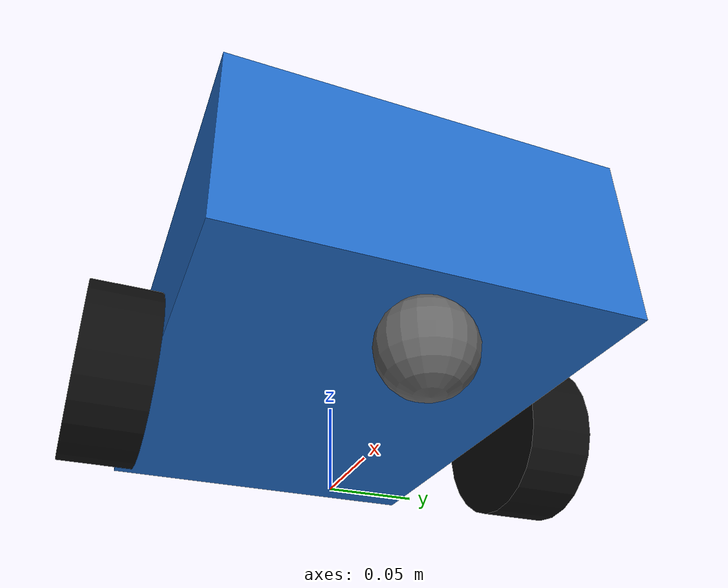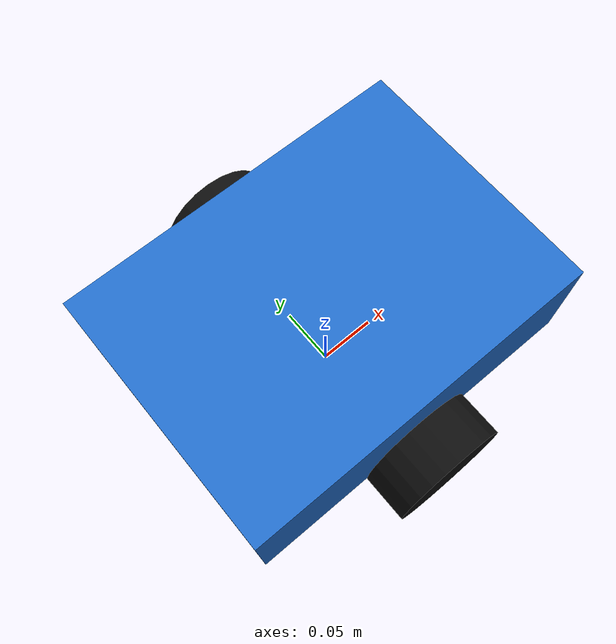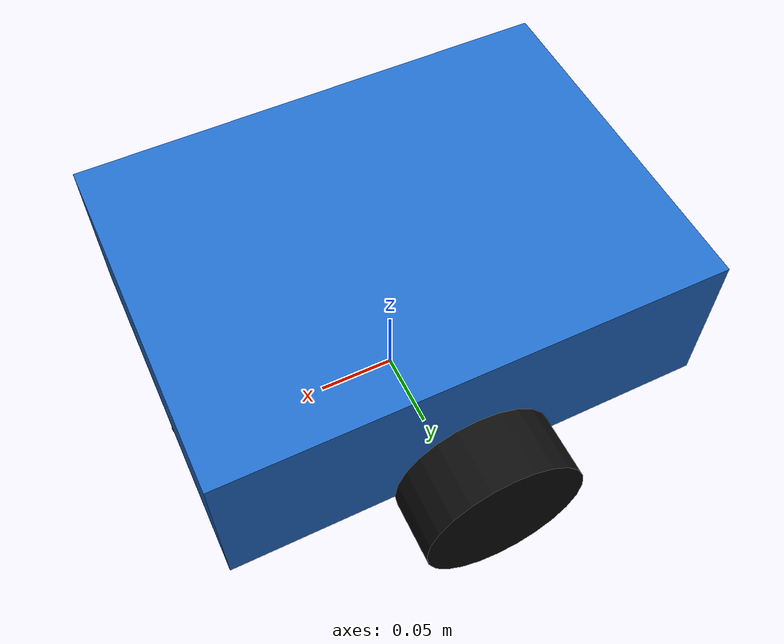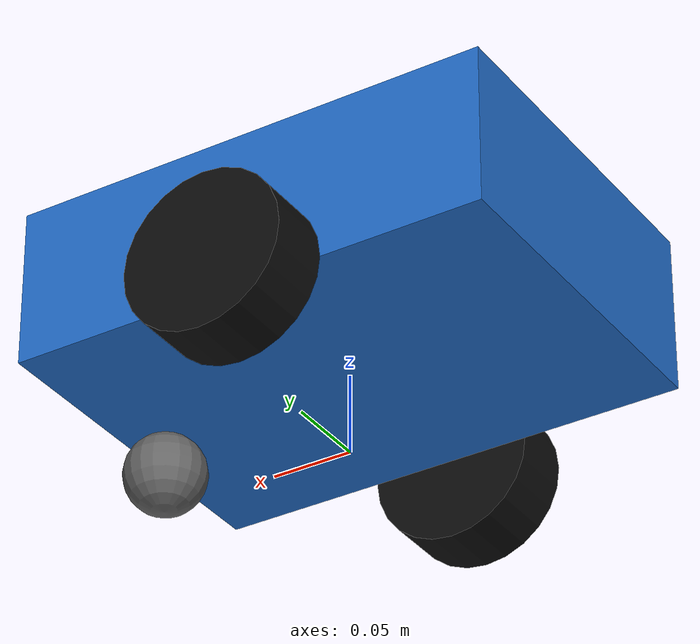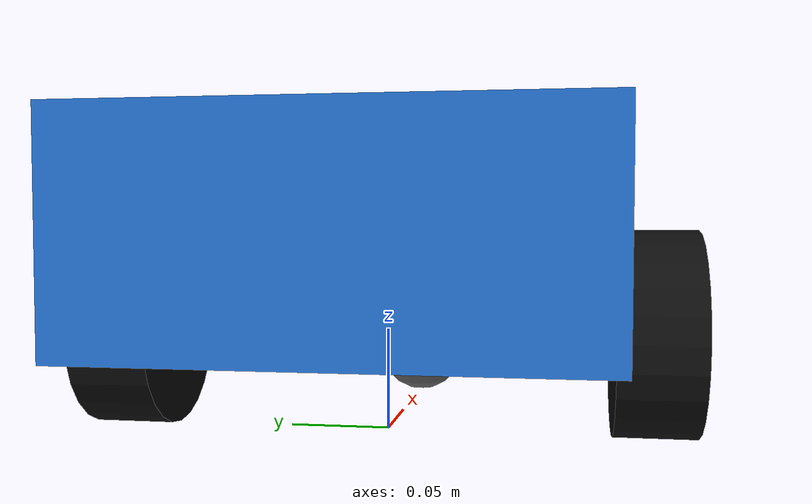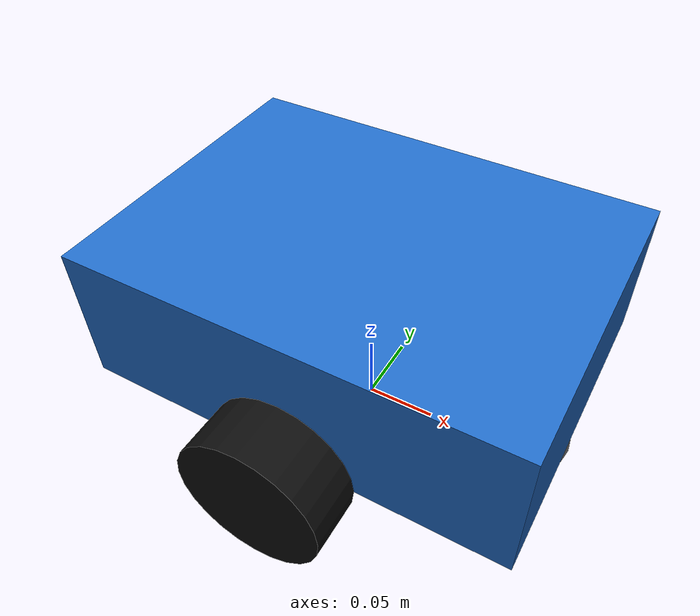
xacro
<?xml version="1.0"?>
<robot xmlns:xacro="http://www.ros.org/wiki/xacro">

  <!-- ===================== Parameters ===================== -->
  <xacro:property name="base_length" value="0.30"/>
  <xacro:property name="base_width"  value="0.22"/>
  <xacro:property name="base_height" value="0.10"/>
  <xacro:property name="wheel_radius" value="0.05"/>
  <xacro:property name="wheel_width"  value="0.04"/>
  <xacro:property name="wheel_separation" value="0.26"/>  <!-- centre-to-centre -->
  <xacro:property name="wheel_zoff" value="0.0"/>
  <xacro:property name="caster_radius" value="0.025"/>

  <!-- ===================== Materials ===================== -->
  <material name="blue">  <color rgba="0.13 0.42 0.78 1.0"/></material>
  <material name="grey">  <color rgba="0.4 0.4 0.4 1.0"/></material>
  <material name="black"> <color rgba="0.05 0.05 0.05 1.0"/></material>
  <material name="white"> <color rgba="0.9 0.9 0.9 1.0"/></material>

  <!-- ===================== base_footprint ===================== -->
  <!-- A massless frame projected onto the ground; Nav2 reasons about this. -->
  <link name="base_footprint"/>

  <joint name="base_joint" type="fixed">
    <parent link="base_footprint"/>
    <child  link="base_link"/>
    <origin xyz="0 0 ${wheel_radius}" rpy="0 0 0"/>
  </joint>

  <!-- ===================== base_link (chassis) ===================== -->
  <link name="base_link">
    <visual>
      <origin xyz="0 0 ${base_height/2}" rpy="0 0 0"/>
      <geometry><box size="${base_length} ${base_width} ${base_height}"/></geometry>
      <material name="blue"/>
    </visual>
    <collision>
      <origin xyz="0 0 ${base_height/2}" rpy="0 0 0"/>
      <geometry><box size="${base_length} ${base_width} ${base_height}"/></geometry>
    </collision>
    <xacro:inertial_box mass="2.0" x="${base_length}" y="${base_width}" z="${base_height}">
      <origin xyz="0 0 ${base_height/2}" rpy="0 0 0"/>
    </xacro:inertial_box>
  </link>

  <!-- ===================== Drive wheels ===================== -->
  <xacro:macro name="wheel" params="prefix y_reflect">
    <link name="${prefix}_wheel">
      <visual>
        <origin xyz="0 0 0" rpy="${pi/2} 0 0"/>
        <geometry><cylinder radius="${wheel_radius}" length="${wheel_width}"/></geometry>
        <material name="black"/>
      </visual>
      <collision>
        <origin xyz="0 0 0" rpy="${pi/2} 0 0"/>
        <geometry><cylinder radius="${wheel_radius}" length="${wheel_width}"/></geometry>
      </collision>
      <xacro:inertial_cylinder mass="0.3" length="${wheel_width}" radius="${wheel_radius}">
        <origin xyz="0 0 0" rpy="${pi/2} 0 0"/>
      </xacro:inertial_cylinder>
    </link>

    <joint name="${prefix}_wheel_joint" type="continuous">
      <parent link="base_link"/>
      <child  link="${prefix}_wheel"/>
      <origin xyz="0 ${y_reflect * wheel_separation/2} 0" rpy="0 0 0"/>
      <axis xyz="0 1 0"/>
    </joint>
  </xacro:macro>

  <xacro:wheel prefix="left"  y_reflect="1"/>
  <xacro:wheel prefix="right" y_reflect="-1"/>

  <!-- ===================== Caster wheel ===================== -->
  <link name="caster_wheel">
    <visual>
      <geometry><sphere radius="${caster_radius}"/></geometry>
      <material name="grey"/>
    </visual>
    <collision>
      <geometry><sphere radius="${caster_radius}"/></geometry>
    </collision>
    <xacro:inertial_sphere mass="0.05" radius="${caster_radius}">
      <origin xyz="0 0 0" rpy="0 0 0"/>
    </xacro:inertial_sphere>
  </link>

  <joint name="caster_wheel_joint" type="fixed">
    <parent link="base_link"/>
    <child  link="caster_wheel"/>
    <origin xyz="${base_length/2 - caster_radius} 0 ${-(wheel_radius - caster_radius)}" rpy="0 0 0"/>
  </joint>

  <!-- Low-friction caster so it slides instead of dragging (set in Gazebo). -->
  <gazebo reference="caster_wheel">
    <mu1>0.001</mu1>
    <mu2>0.001</mu2>
  </gazebo>

</robot>
